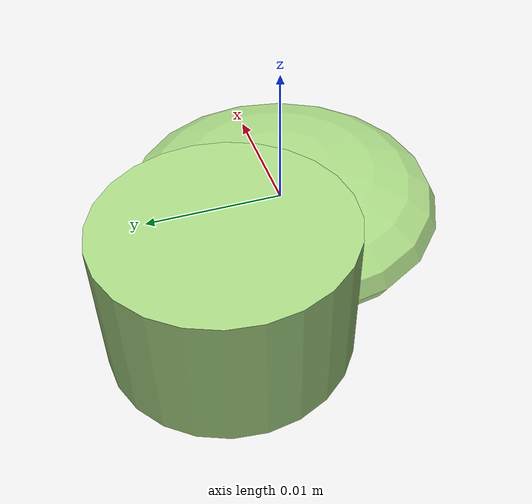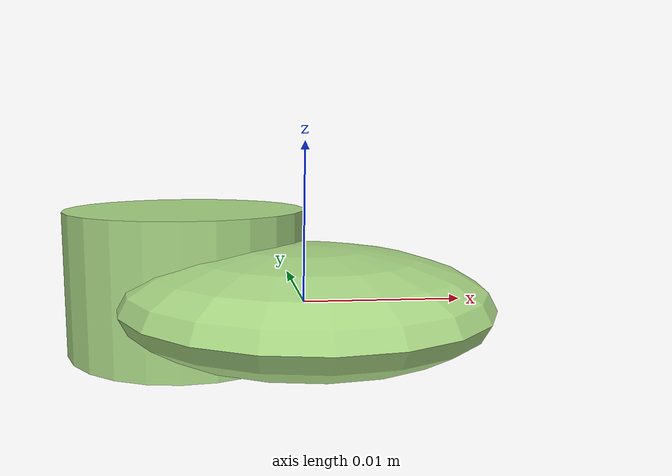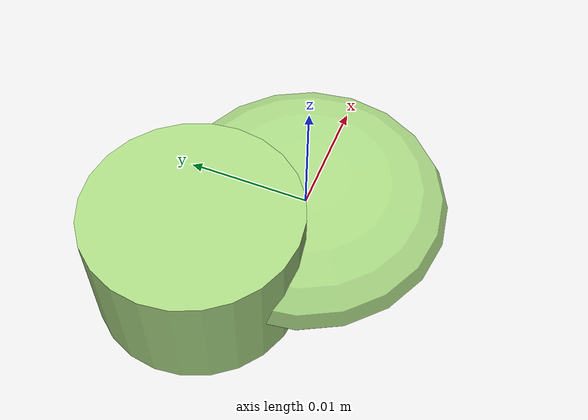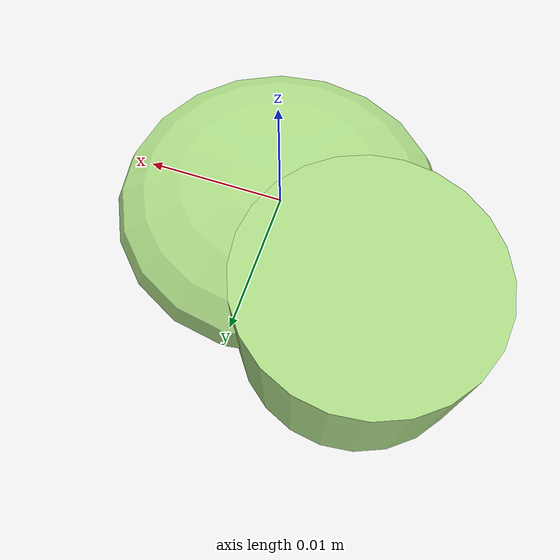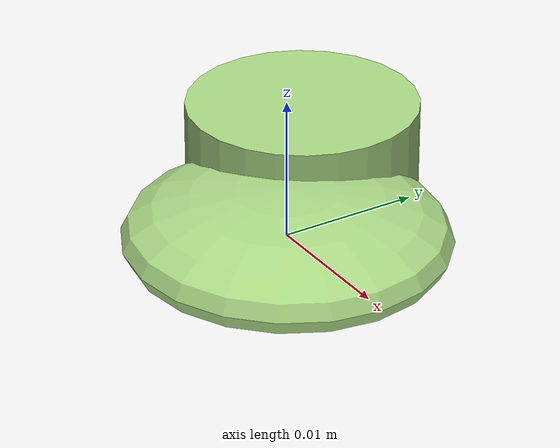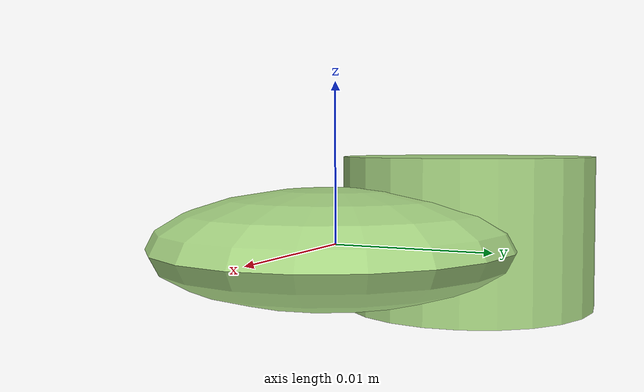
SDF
<?xml version="1.0" ?>
<!-- |    This document was autogenerated by xmacro from data/veggie_template/veggie_base.sdf.xacro  | -->
<!-- |    EDITING THIS FILE BY HAND IS NOT RECOMMENDED                                               | -->
<sdf version="1.8">
	<!-- Parameters -->
	<!-- Base -->
	<!-- Joint 0 -->
	<!-- Link 1 -->
	<!-- Joint 1 -->
	<!-- Link 2 -->
	<!-- Primitives -->
	<!-- All dimensions are half -->
	<!-- Object -->
	<model name="veggie">
		<!-- link0 -->
		<link name="link0">
			<inertial>
				<mass>0.0019374907865787648</mass>
				<inertia>
					<ixx>5.40933754197643e-08</ixx>
					<ixy>0</ixy>
					<ixz>0</ixz>
					<iyy>5.742731884791501e-08</iyy>
					<iyz>0</iyz>
					<izz>1.0192429139659822e-07</izz>
				</inertia>
			</inertial>
			<visual name="link0_visual">
				<pose>0 0 0 0 0 0</pose>
				<geometry>
					<ellipsoid>
						<radii>0.011654086109565587 0.011278916488727397 0.0035188796797090685</radii>
					</ellipsoid>
				</geometry>
				<material>
					<ambient>0.659 0.839 0.514 1</ambient>
					<diffuse>0.659 0.839 0.514 1</diffuse>
					<specular>0 0 0 0</specular>
					<emissive>0 0 0 1</emissive>
				</material>
			</visual>
			<collision name="link0_collision">
				<pose>0 0 0 0 0 0 </pose>
				<geometry>
					<ellipsoid>
						<radii>0.011654086109565587 0.011278916488727397 0.0035188796797090685</radii>
					</ellipsoid>
				</geometry>
			</collision>
		</link>
		<!-- link1 -->
		<joint name="joint0" type="fixed">
			<pose relative_to="link0">-0.007590866064011193 0.00601400424204692 0.00044071726129451454 0.0 0.0 0.0</pose>
			<parent>link0</parent>
			<child>link1</child>
		</joint>
		<link name="link1">
			<pose relative_to="joint0">0 0 0 0 0 0</pose>
			<inertial>
				<mass>0.002137367428118262</mass>
				<inertia>
					<ixx>5.419138134860754e-08</ixx>
					<ixy>0</ixy>
					<ixz>0</ixz>
					<iyy>5.419138134860754e-08</iyy>
					<iyz>0</iyz>
					<izz>7.39095020301717e-08</izz>
				</inertia>
			</inertial>
			<visual name="link1_visual">
				<pose>0 0 0 0 0 0</pose>
				<geometry>
					<cylinder>
						<radius>0.008316211818925985</radius>
						<length>0.009837329390542434</length>
					</cylinder>
				</geometry>
				<material>
					<ambient>0.659 0.839 0.514 1</ambient>
					<diffuse>0.659 0.839 0.514 1</diffuse>
					<specular>0 0 0 0</specular>
					<emissive>0 0 0 1</emissive>
				</material>
			</visual>
			<collision name="link1_collision">
				<pose>0 0 0 0 0 0 </pose>
				<geometry>
					<cylinder>
						<radius>0.008316211818925985</radius>
						<length>0.009837329390542434</length>
					</cylinder>
				</geometry>
			</collision>
		</link>
		<!-- link2 -->
	</model>
</sdf>
